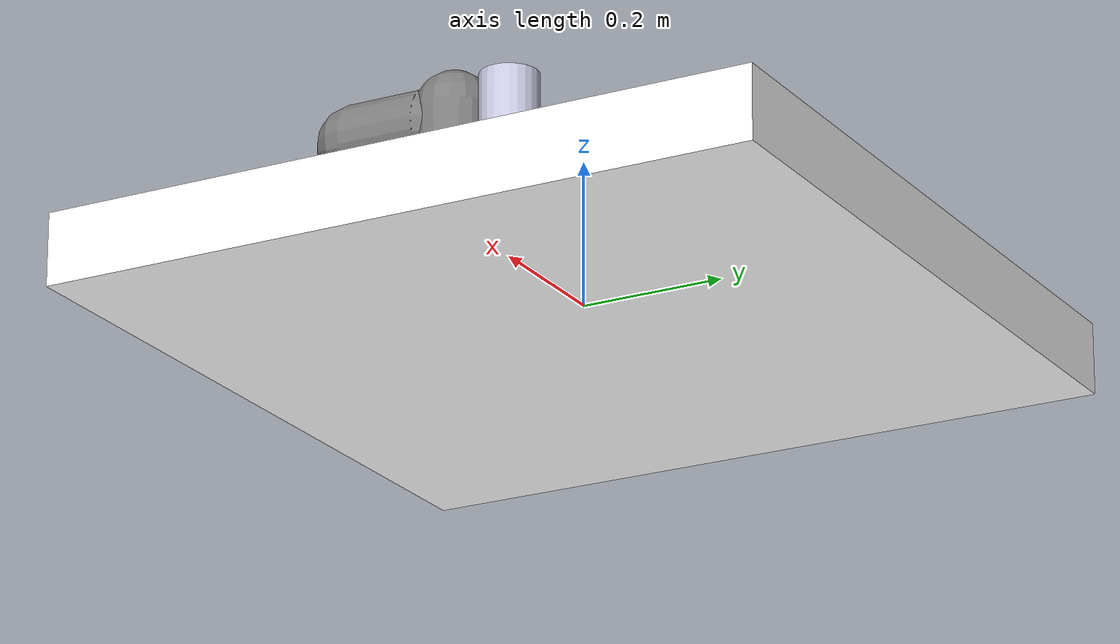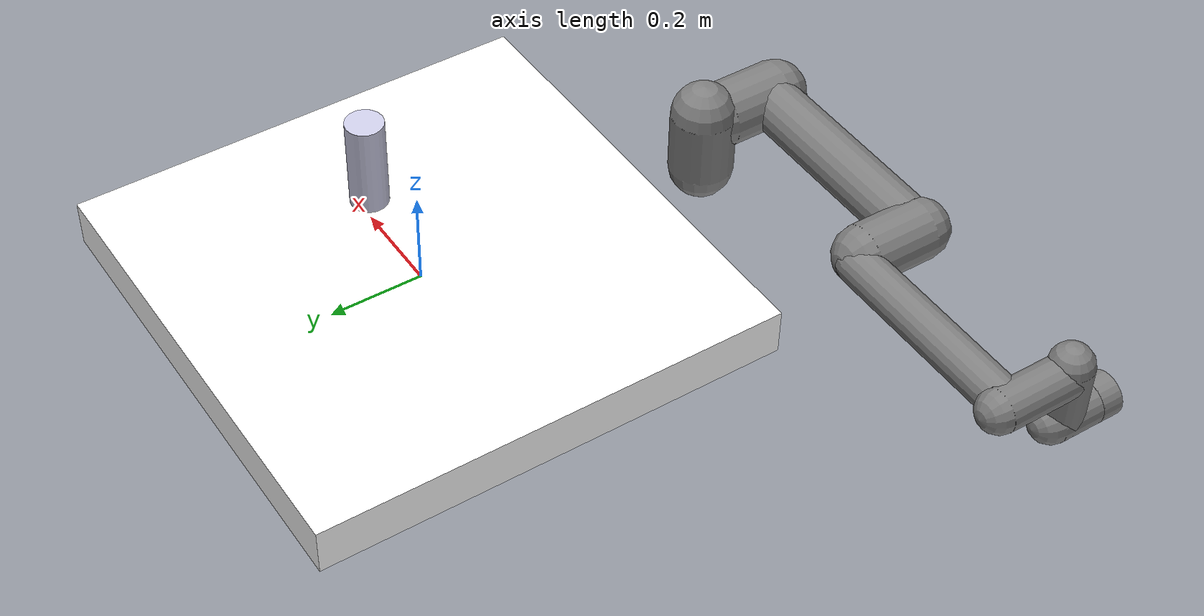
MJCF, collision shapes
<mujoco model="ur5e">
  <compiler angle="radian" meshdir="assets/" autolimits="true"/>
  <option integrator="implicitfast"/>
  <size nkey="1"/>
  <statistic meansize="0.251629" extent="1.98587" center="-0.284064 -0.0781146 0.02269"/>
  <default class="main">
    <default class="ur5e">
      <material shininess="0.25"/>
      <joint range="-6.28319 6.28319" armature="0.1"/>
      <site size="0.001 0.005 0.005" group="4" rgba="0.5 0.5 0.5 0.3"/>
      <general ctrlrange="-6.2831 6.2831" forcerange="-150 150" biastype="affine" gainprm="2000 0 0 0 0 0 0 0 0 0" biasprm="0 -2000 -400 0 0 0 0 0 0 0"/>
      <default class="size3">
        <default class="size3_limited">
          <joint range="-3.1415 3.1415"/>
          <general ctrlrange="-3.1415 3.1415"/>
        </default>
      </default>
      <default class="size1">
        <general forcerange="-28 28" gainprm="500 0 0 0 0 0 0 0 0 0" biasprm="0 -500 -100 0 0 0 0 0 0 0"/>
      </default>
      <default class="visual">
        <geom type="mesh" contype="0" conaffinity="0" group="2"/>
      </default>
      <default class="collision">
        <geom type="capsule" group="3"/>
        <default class="eef_collision">
          <geom type="cylinder"/>
        </default>
      </default>
    </default>
  </default>
  <asset>
    <material name="black" class="ur5e" rgba="0.033 0.033 0.033 1"/>
    <material name="jointgray" class="ur5e" rgba="0.278 0.278 0.278 1"/>
    <material name="linkgray" class="ur5e" rgba="0.82 0.82 0.82 1"/>
    <material name="urblue" class="ur5e" rgba="0.49 0.678 0.8 1"/>
    <material name="table"/>
    <material name="glass" rgba="0.8 0.8 0.9 0.5"/>
    <mesh name="base_0" file="base_0.obj"/>
    <mesh name="base_1" file="base_1.obj"/>
    <mesh name="shoulder_0" file="shoulder_0.obj"/>
    <mesh name="shoulder_1" file="shoulder_1.obj"/>
    <mesh name="shoulder_2" file="shoulder_2.obj"/>
    <mesh name="upperarm_0" file="upperarm_0.obj"/>
    <mesh name="upperarm_1" file="upperarm_1.obj"/>
    <mesh name="upperarm_2" file="upperarm_2.obj"/>
    <mesh name="upperarm_3" file="upperarm_3.obj"/>
    <mesh name="forearm_0" file="forearm_0.obj"/>
    <mesh name="forearm_1" file="forearm_1.obj"/>
    <mesh name="forearm_2" file="forearm_2.obj"/>
    <mesh name="forearm_3" file="forearm_3.obj"/>
    <mesh name="wrist1_0" file="wrist1_0.obj"/>
    <mesh name="wrist1_1" file="wrist1_1.obj"/>
    <mesh name="wrist1_2" file="wrist1_2.obj"/>
    <mesh name="wrist2_0" file="wrist2_0.obj"/>
    <mesh name="wrist2_1" file="wrist2_1.obj"/>
    <mesh name="wrist2_2" file="wrist2_2.obj"/>
    <mesh name="wrist3" file="wrist3.obj"/>
  </asset>
  <worldbody>
    <light name="spotlight" target="wrist_2_link" pos="0 -1 2" dir="0 0 -1" mode="targetbodycom"/>
    <body name="table">
      <geom size="0.5 0.5 0.05" type="box" material="table" rgba="1 1 1 1"/>
    </body>
    <body name="glass" pos="0.2 0 0.15">
      <joint type="free"/>
      <geom size="0.04 0.1" type="cylinder" friction="0.9 0.1 0.1" mass="0.2" material="glass" rgba="0.8 0.8 0.9 0.5"/>
    </body>
    <body name="base" childclass="ur5e" pos="-0.35 -0.4 0.3" quat="0 0 0 -1">
      <inertial pos="0 0 0" mass="4" diaginertia="0.00443333 0.00443333 0.0072"/>
      <geom class="visual" material="black" mesh="base_0"/>
      <geom class="visual" material="jointgray" mesh="base_1"/>
      <body name="shoulder_link" pos="0 0 0.163">
        <inertial pos="0 0 0" mass="3.7" diaginertia="0.0102675 0.0102675 0.00666"/>
        <joint name="shoulder_pan_joint" class="size3" pos="0 0 0" axis="0 0 1"/>
        <geom class="visual" material="urblue" mesh="shoulder_0"/>
        <geom class="visual" material="black" mesh="shoulder_1"/>
        <geom class="visual" material="jointgray" mesh="shoulder_2"/>
        <geom class="collision" size="0.06 0.06" pos="0 0 -0.04"/>
        <body name="upper_arm_link" pos="0 0.138 0" quat="0.707107 0 0.707107 0">
          <inertial pos="0 0 0.2125" mass="8.393" diaginertia="0.133886 0.133886 0.0151074"/>
          <joint name="shoulder_lift_joint" class="size3" pos="0 0 0" axis="0 1 0"/>
          <geom class="visual" material="linkgray" mesh="upperarm_0"/>
          <geom class="visual" material="black" mesh="upperarm_1"/>
          <geom class="visual" material="jointgray" mesh="upperarm_2"/>
          <geom class="visual" material="urblue" mesh="upperarm_3"/>
          <geom class="collision" size="0.06 0.06" pos="0 -0.04 0" quat="0.707107 0.707107 0 0"/>
          <geom class="collision" size="0.05 0.2" pos="0 0 0.2"/>
          <body name="forearm_link" pos="0 -0.131 0.425">
            <inertial pos="0 0 0.196" mass="2.275" diaginertia="0.0311796 0.0311796 0.004095"/>
            <joint name="elbow_joint" class="size3_limited" pos="0 0 0" axis="0 1 0"/>
            <geom class="visual" material="urblue" mesh="forearm_0"/>
            <geom class="visual" material="linkgray" mesh="forearm_1"/>
            <geom class="visual" material="black" mesh="forearm_2"/>
            <geom class="visual" material="jointgray" mesh="forearm_3"/>
            <geom class="collision" size="0.055 0.06" pos="0 0.08 0" quat="0.707107 0.707107 0 0"/>
            <geom class="collision" size="0.038 0.19" pos="0 0 0.2"/>
            <body name="wrist_1_link" pos="0 0 0.392" quat="0.707107 0 0.707107 0">
              <inertial pos="0 0.127 0" mass="1.219" diaginertia="0.0025599 0.0025599 0.0021942"/>
              <joint name="wrist_1_joint" class="size1" pos="0 0 0" axis="0 1 0"/>
              <geom class="visual" material="black" mesh="wrist1_0"/>
              <geom class="visual" material="urblue" mesh="wrist1_1"/>
              <geom class="visual" material="jointgray" mesh="wrist1_2"/>
              <geom class="collision" size="0.04 0.07" pos="0 0.05 0" quat="0.707107 0.707107 0 0"/>
              <body name="wrist_2_link" pos="0 0.127 0">
                <inertial pos="0 0 0.1" mass="1.219" diaginertia="0.0025599 0.0025599 0.0021942"/>
                <joint name="wrist_2_joint" class="size1" pos="0 0 0" axis="0 0 1"/>
                <geom class="visual" material="black" mesh="wrist2_0"/>
                <geom class="visual" material="urblue" mesh="wrist2_1"/>
                <geom class="visual" material="jointgray" mesh="wrist2_2"/>
                <geom class="collision" size="0.04 0.06" pos="0 0 0.04"/>
                <geom class="collision" size="0.04 0.04" pos="0 0.02 0.1" quat="0.707107 0.707107 0 0"/>
                <body name="wrist_3_link" pos="0 0 0.1">
                  <inertial pos="0 0.0771683 0" quat="0.707107 0 0 0.707107" mass="0.1889" diaginertia="0.000132134 9.90863e-05 9.90863e-05"/>
                  <joint name="wrist_3_joint" class="size1" pos="0 0 0" axis="0 1 0"/>
                  <geom class="visual" material="linkgray" mesh="wrist3"/>
                  <geom class="eef_collision" size="0.04 0.02" pos="0 0.08 0" quat="0.707107 0.707107 0 0"/>
                  <site name="attachment_site" pos="0 0.1 0" quat="-0.707107 0.707107 0 0"/>
                </body>
              </body>
            </body>
          </body>
        </body>
      </body>
    </body>
  </worldbody>
  <actuator>
    <general name="shoulder_pan" class="size3" joint="shoulder_pan_joint"/>
    <general name="shoulder_lift" class="size3" joint="shoulder_lift_joint"/>
    <general name="elbow" class="size3_limited" joint="elbow_joint"/>
    <general name="wrist_1" class="size1" joint="wrist_1_joint"/>
    <general name="wrist_2" class="size1" joint="wrist_2_joint"/>
    <general name="wrist_3" class="size1" joint="wrist_3_joint"/>
  </actuator>
  <keyframe>
    <key name="home" qpos="0.5 0 0 0 0 0 1 0 0.1 1 0 0 0"/>
  </keyframe>
</mujoco>
